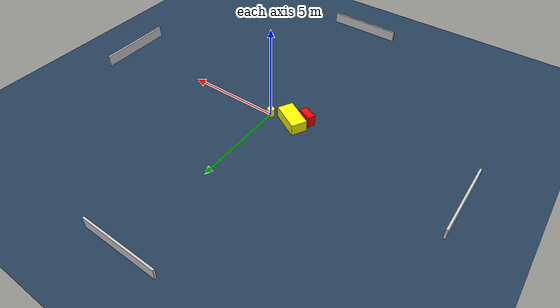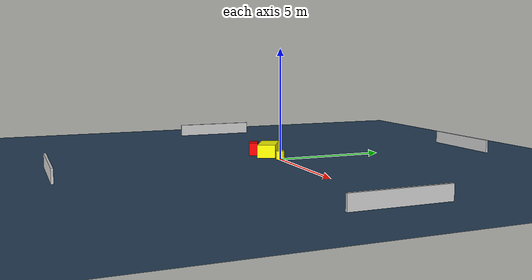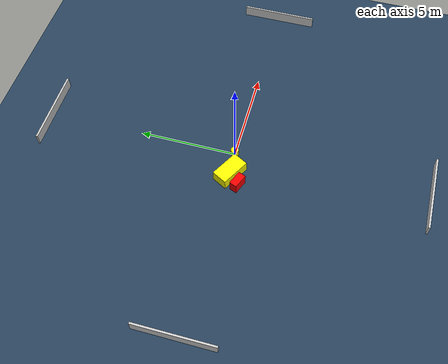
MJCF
<?xml version="1.0" ?>
<mujoco model="generated_environment">
  <option timestep="0.01" integrator="RK4" cone="elliptic"/>
  <default>
    <geom density="1"/>
  </default>
  <asset>
    <texture builtin="gradient" height="3072" name="skybox" rgb1="0.3 0.5 0.7" rgb2="0 0 0" type="skybox" width="512"/>
    <texture builtin="checker" height="300" name="groundplane" rgb1="0.2 0.3 0.4" rgb2="0.1 0.2 0.3" type="2d" width="300"/>
    <material name="groundplane" reflectance="0.2" texrepeat="5 5" texture="groundplane"/>
  </asset>
  <worldbody>
    <light dir="0 0 -1" directional="true" pos="0 0 1.5"/>
    <geom condim="3" friction="0.5 0.005 0.001" material="groundplane" name="floor" pos="0 0 0" size="0 0 0.05" type="plane"/>
    <body name="walls">
      <geom name="wall_1" condim="4" pos="-10.0 0.0 0.3" rgba="0.800000011920929 0.800000011920929 0.800000011920929 1.0" size="0.05 2.0 0.3" type="box"/>
      <geom name="wall_2" condim="4" pos="10.0 0.0 0.3" rgba="0.800000011920929 0.800000011920929 0.800000011920929 1.0" size="0.05 2.0 0.3" type="box"/>
      <geom name="wall_3" condim="4" pos="0.0 -10.0 0.3" rgba="0.800000011920929 0.800000011920929 0.800000011920929 1.0" size="2.0 0.05 0.3" type="box"/>
      <geom name="wall_4" condim="4" pos="0.0 10.0 0.3" rgba="0.800000011920929 0.800000011920929 0.800000011920929 1.0" size="2.0 0.05 0.3" type="box"/>
    </body>
    <body name="robot">
      <joint name="joint_x" type="slide" pos="0 0 0" axis="1 0 0"/>
      <joint name="joint_y" type="slide" pos="0 0 0" axis="0 1 0"/>
      <geom name="robot" type="cylinder" pos="0.0 0.0 0.2" size="0.2 0.2 0.0" mass="5.0" friction="1.0 0.005 0.0001" condim="4" rgba="1.0 1.0 0.0 1.0"/>
    </body>
    <body name="obstacle_1_movable">
      <geom name="obstacle_1_movable" condim="4" pos="-1.2371253919447176 -0.08698817949827328 0.3" euler="0 0 241.21434122584807" friction="0.0 0.005 0.001" rgba="1.0 1.0 0.0 1.0" size="0.41391682816442965 0.7790943458792108 0.3" type="box" mass="0.1"/>
      <joint type="free"/>
    </body>
    <body name="obstacle_2_static">
      <geom name="obstacle_2_static" condim="4" pos="-1.7870301402167603 -0.6244631629163455 0.3" euler="0 0 158.02752683971863" friction="0.0 0.005 0.001" rgba="1.0 0.0 0.0 1.0" size="0.3838035640531296 0.20330206113091087 0.3" type="box"/>
    </body>
  </worldbody>
  <actuator>
    <motor name="actuator_x" joint="joint_x" gear="1" ctrlrange="-1 1"/>
    <motor name="actuator_y" joint="joint_y" gear="1" ctrlrange="-1 1"/>
  </actuator>
</mujoco>
